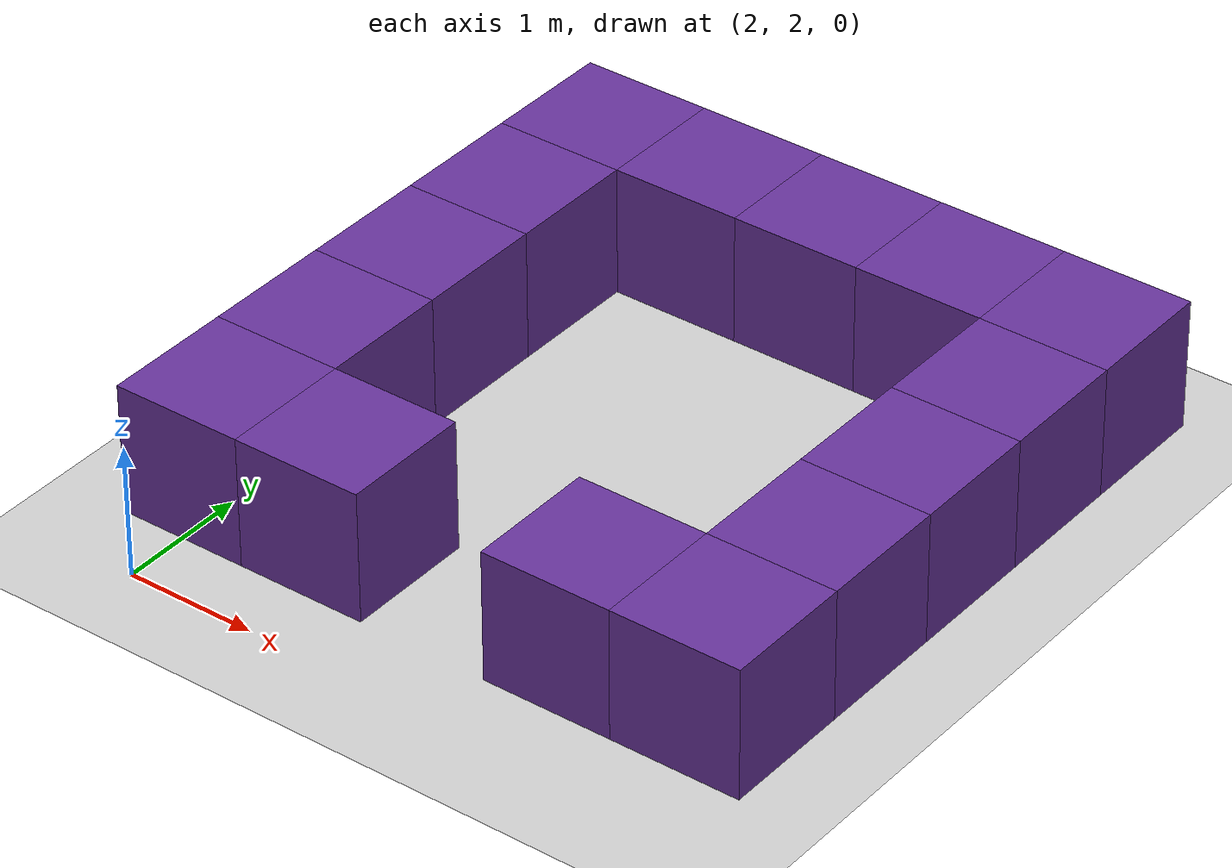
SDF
<?xml version="1.0"?>
<sdf version="1.6">
  <world name="default">
    <include><uri>model://sun</uri></include>
    <include><uri>model://ground_plane</uri></include>

    <model name='wall_block_0'>
      <pose>2.0 7.0 0.5 0 0 0</pose>
      <static>true</static>
      <link name='link'>
        <collision name='collision'>
          <geometry><box><size>1.0 1.0 1.0</size></box></geometry>
        </collision>
        <visual name='visual'>
          <geometry><box><size>1.0 1.0 1.0</size></box></geometry>
          <material><ambient>0.4 0.2 0.6 1</ambient></material> </visual>
      </link>
    </model>
    <model name='wall_block_1'>
      <pose>3.0 7.0 0.5 0 0 0</pose>
      <static>true</static>
      <link name='link'>
        <collision name='collision'>
          <geometry><box><size>1.0 1.0 1.0</size></box></geometry>
        </collision>
        <visual name='visual'>
          <geometry><box><size>1.0 1.0 1.0</size></box></geometry>
          <material><ambient>0.4 0.2 0.6 1</ambient></material> </visual>
      </link>
    </model>
    <model name='wall_block_2'>
      <pose>4.0 7.0 0.5 0 0 0</pose>
      <static>true</static>
      <link name='link'>
        <collision name='collision'>
          <geometry><box><size>1.0 1.0 1.0</size></box></geometry>
        </collision>
        <visual name='visual'>
          <geometry><box><size>1.0 1.0 1.0</size></box></geometry>
          <material><ambient>0.4 0.2 0.6 1</ambient></material> </visual>
      </link>
    </model>
    <model name='wall_block_3'>
      <pose>5.0 7.0 0.5 0 0 0</pose>
      <static>true</static>
      <link name='link'>
        <collision name='collision'>
          <geometry><box><size>1.0 1.0 1.0</size></box></geometry>
        </collision>
        <visual name='visual'>
          <geometry><box><size>1.0 1.0 1.0</size></box></geometry>
          <material><ambient>0.4 0.2 0.6 1</ambient></material> </visual>
      </link>
    </model>
    <model name='wall_block_4'>
      <pose>6.0 7.0 0.5 0 0 0</pose>
      <static>true</static>
      <link name='link'>
        <collision name='collision'>
          <geometry><box><size>1.0 1.0 1.0</size></box></geometry>
        </collision>
        <visual name='visual'>
          <geometry><box><size>1.0 1.0 1.0</size></box></geometry>
          <material><ambient>0.4 0.2 0.6 1</ambient></material> </visual>
      </link>
    </model>
    <model name='wall_block_5'>
      <pose>2.0 6.0 0.5 0 0 0</pose>
      <static>true</static>
      <link name='link'>
        <collision name='collision'>
          <geometry><box><size>1.0 1.0 1.0</size></box></geometry>
        </collision>
        <visual name='visual'>
          <geometry><box><size>1.0 1.0 1.0</size></box></geometry>
          <material><ambient>0.4 0.2 0.6 1</ambient></material> </visual>
      </link>
    </model>
    <model name='wall_block_6'>
      <pose>6.0 6.0 0.5 0 0 0</pose>
      <static>true</static>
      <link name='link'>
        <collision name='collision'>
          <geometry><box><size>1.0 1.0 1.0</size></box></geometry>
        </collision>
        <visual name='visual'>
          <geometry><box><size>1.0 1.0 1.0</size></box></geometry>
          <material><ambient>0.4 0.2 0.6 1</ambient></material> </visual>
      </link>
    </model>
    <model name='wall_block_7'>
      <pose>2.0 5.0 0.5 0 0 0</pose>
      <static>true</static>
      <link name='link'>
        <collision name='collision'>
          <geometry><box><size>1.0 1.0 1.0</size></box></geometry>
        </collision>
        <visual name='visual'>
          <geometry><box><size>1.0 1.0 1.0</size></box></geometry>
          <material><ambient>0.4 0.2 0.6 1</ambient></material> </visual>
      </link>
    </model>
    <model name='wall_block_8'>
      <pose>6.0 5.0 0.5 0 0 0</pose>
      <static>true</static>
      <link name='link'>
        <collision name='collision'>
          <geometry><box><size>1.0 1.0 1.0</size></box></geometry>
        </collision>
        <visual name='visual'>
          <geometry><box><size>1.0 1.0 1.0</size></box></geometry>
          <material><ambient>0.4 0.2 0.6 1</ambient></material> </visual>
      </link>
    </model>
    <model name='wall_block_9'>
      <pose>2.0 4.0 0.5 0 0 0</pose>
      <static>true</static>
      <link name='link'>
        <collision name='collision'>
          <geometry><box><size>1.0 1.0 1.0</size></box></geometry>
        </collision>
        <visual name='visual'>
          <geometry><box><size>1.0 1.0 1.0</size></box></geometry>
          <material><ambient>0.4 0.2 0.6 1</ambient></material> </visual>
      </link>
    </model>
    <model name='wall_block_10'>
      <pose>6.0 4.0 0.5 0 0 0</pose>
      <static>true</static>
      <link name='link'>
        <collision name='collision'>
          <geometry><box><size>1.0 1.0 1.0</size></box></geometry>
        </collision>
        <visual name='visual'>
          <geometry><box><size>1.0 1.0 1.0</size></box></geometry>
          <material><ambient>0.4 0.2 0.6 1</ambient></material> </visual>
      </link>
    </model>
    <model name='wall_block_11'>
      <pose>2.0 3.0 0.5 0 0 0</pose>
      <static>true</static>
      <link name='link'>
        <collision name='collision'>
          <geometry><box><size>1.0 1.0 1.0</size></box></geometry>
        </collision>
        <visual name='visual'>
          <geometry><box><size>1.0 1.0 1.0</size></box></geometry>
          <material><ambient>0.4 0.2 0.6 1</ambient></material> </visual>
      </link>
    </model>
    <model name='wall_block_12'>
      <pose>3.0 3.0 0.5 0 0 0</pose>
      <static>true</static>
      <link name='link'>
        <collision name='collision'>
          <geometry><box><size>1.0 1.0 1.0</size></box></geometry>
        </collision>
        <visual name='visual'>
          <geometry><box><size>1.0 1.0 1.0</size></box></geometry>
          <material><ambient>0.4 0.2 0.6 1</ambient></material> </visual>
      </link>
    </model>
    <model name='wall_block_13'>
      <pose>5.0 3.0 0.5 0 0 0</pose>
      <static>true</static>
      <link name='link'>
        <collision name='collision'>
          <geometry><box><size>1.0 1.0 1.0</size></box></geometry>
        </collision>
        <visual name='visual'>
          <geometry><box><size>1.0 1.0 1.0</size></box></geometry>
          <material><ambient>0.4 0.2 0.6 1</ambient></material> </visual>
      </link>
    </model>
    <model name='wall_block_14'>
      <pose>6.0 3.0 0.5 0 0 0</pose>
      <static>true</static>
      <link name='link'>
        <collision name='collision'>
          <geometry><box><size>1.0 1.0 1.0</size></box></geometry>
        </collision>
        <visual name='visual'>
          <geometry><box><size>1.0 1.0 1.0</size></box></geometry>
          <material><ambient>0.4 0.2 0.6 1</ambient></material> </visual>
      </link>
    </model>
  </world>
</sdf>
